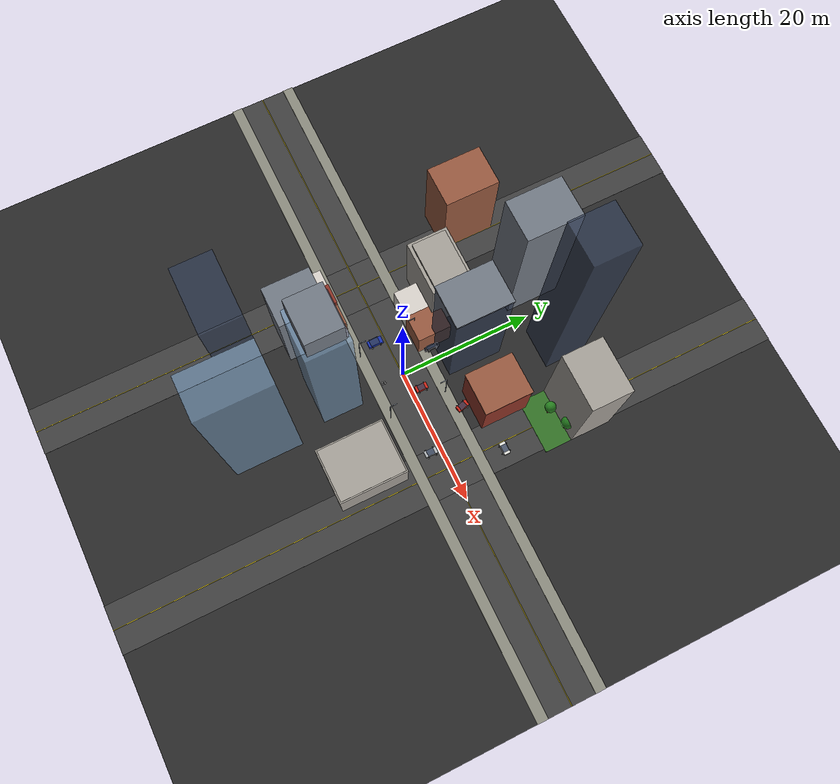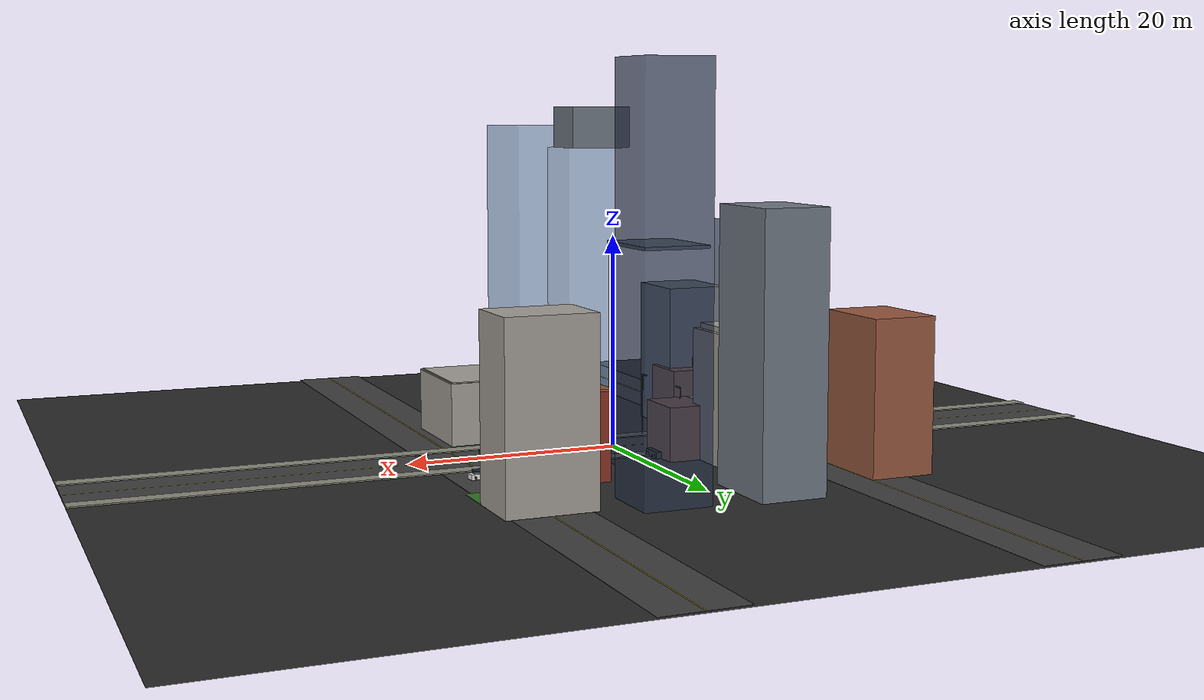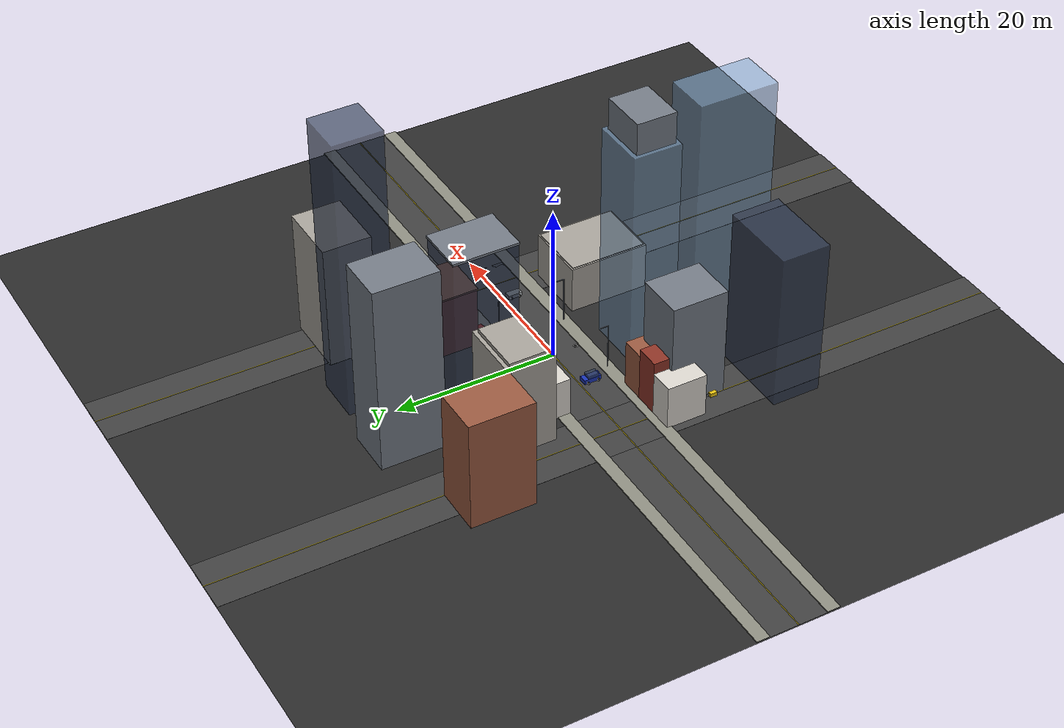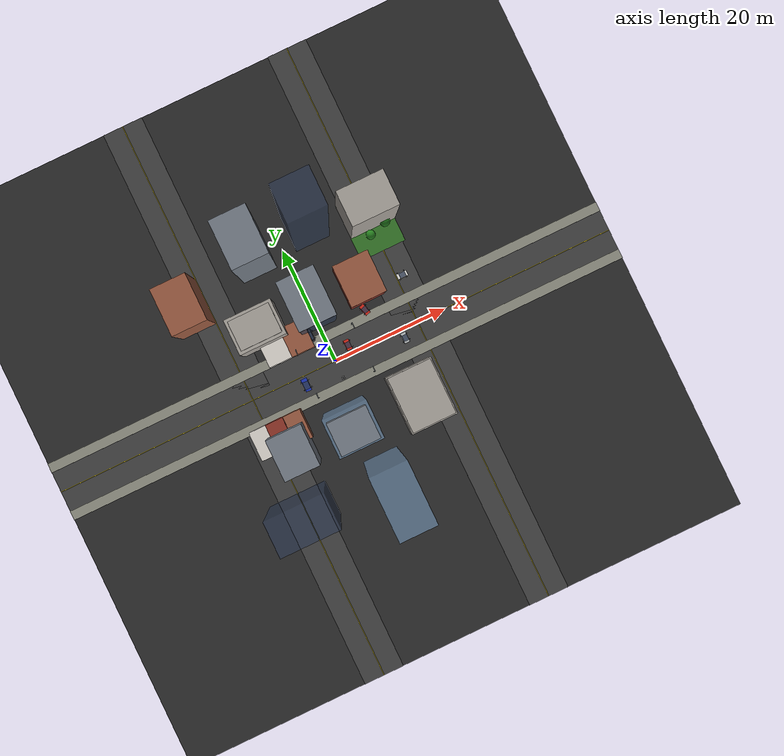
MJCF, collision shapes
<mujoco model="Skydio X2 City">
  <compiler autolimits="true" assetdir="assets"/>

  <option timestep="0.01" density="1.225" viscosity="1.8e-5"/>

  <default>
    <!-- City scenery: visual only, no collision with drone -->
    <default class="scenery">
      <geom contype="0" conaffinity="0"/>
    </default>
    <default class="x2">
      <geom mass="0"/>
      <motor ctrlrange="0 13"/>
      <mesh scale="0.01 0.01 0.01"/>
      <default class="visual">
        <geom group="2" type="mesh" contype="0" conaffinity="0"/>
      </default>
      <default class="collision">
        <geom group="3" type="box"/>
        <default class="rotor">
          <geom type="ellipsoid" size=".13 .13 .01"/>
        </default>
      </default>
      <site group="5"/>
    </default>
  </default>

  <statistic center="0 0 5" extent="30" meansize="0.5"/>

  <visual>
    <headlight diffuse="0.5 0.5 0.5" ambient="0.3 0.3 0.3" specular="0 0 0"/>
    <rgba haze="0.15 0.25 0.35 1"/>
    <global azimuth="-20" elevation="-20" ellipsoidinertia="true"/>
    <map znear="0.01" zfar="200"/>
  </visual>

  <asset>
    <!-- Drone mesh + texture -->
    <texture type="2d" name="x2_tex" file="X2_lowpoly_texture_SpinningProps_1024.png"/>
    <material name="phong3SG" texture="x2_tex"/>
    <material name="invisible" rgba="0 0 0 0"/>
    <mesh class="x2" file="X2_lowpoly.obj"/>

    <!-- Sky -->
    <texture type="skybox" builtin="gradient" rgb1="0.4 0.6 0.8" rgb2="0.05 0.1 0.2"
      width="512" height="3072"/>

    <!-- Road texture -->
    <texture type="2d" name="road_tex" builtin="flat" rgb1="0.25 0.25 0.25"
      width="64" height="64"/>
    <material name="road" texture="road_tex" reflectance="0.05"/>

    <!-- Sidewalk -->
    <texture type="2d" name="sidewalk_tex" builtin="flat" rgb1="0.55 0.55 0.5"
      width="64" height="64"/>
    <material name="sidewalk" texture="sidewalk_tex"/>

    <!-- Grass/park -->
    <texture type="2d" name="grass_tex" builtin="flat" rgb1="0.2 0.45 0.15"
      width="64" height="64"/>
    <material name="grass" texture="grass_tex"/>

    <!-- Ground (asphalt) -->
    <texture type="2d" name="ground_tex" builtin="checker" mark="edge"
      rgb1="0.18 0.18 0.18" rgb2="0.15 0.15 0.15"
      markrgb="0.3 0.3 0.1" width="300" height="300"/>
    <material name="ground" texture="ground_tex" texuniform="true" texrepeat="20 20" reflectance="0.02"/>

    <!-- Building materials -->
    <material name="glass" rgba="0.5 0.65 0.8 0.6" reflectance="0.5"/>
    <material name="concrete" rgba="0.65 0.63 0.6 1" reflectance="0.05"/>
    <material name="brick" rgba="0.6 0.35 0.25 1" reflectance="0.03"/>
    <material name="steel" rgba="0.45 0.48 0.52 1" reflectance="0.3"/>
    <material name="dark_glass" rgba="0.2 0.25 0.35 0.7" reflectance="0.6"/>
    <material name="white_concrete" rgba="0.85 0.83 0.8 1" reflectance="0.1"/>
    <material name="red_brick" rgba="0.55 0.2 0.15 1" reflectance="0.03"/>
    <material name="yellow_paint" rgba="0.9 0.8 0.1 1"/>
    <material name="white_paint" rgba="0.95 0.95 0.95 1"/>

    <!-- Car materials -->
    <material name="car_red" rgba="0.8 0.15 0.1 1" reflectance="0.3"/>
    <material name="car_blue" rgba="0.1 0.2 0.7 1" reflectance="0.3"/>
    <material name="car_white" rgba="0.9 0.9 0.88 1" reflectance="0.25"/>
    <material name="car_black" rgba="0.1 0.1 0.12 1" reflectance="0.35"/>
    <material name="car_silver" rgba="0.7 0.72 0.73 1" reflectance="0.4"/>
    <material name="car_yellow" rgba="0.9 0.75 0.05 1" reflectance="0.3"/>
    <material name="tire" rgba="0.15 0.15 0.15 1" reflectance="0.02"/>
    <material name="window" rgba="0.2 0.25 0.35 0.8" reflectance="0.5"/>
  </asset>

  <worldbody>
    <!-- Lights -->
    <light pos="0 0 30" dir="0 0 -1" directional="true" diffuse="0.8 0.8 0.75" castshadow="true"/>
    <light pos="-20 20 25" dir="0.5 -0.5 -1" diffuse="0.3 0.3 0.35"/>

    <!-- Ground plane -->
    <geom name="floor" size="50 50 0.1" type="plane" material="ground"/>

    <!-- ═══════════════ ROADS ═══════════════ -->
    <!-- Main road (runs along X axis) -->
    <geom class="scenery" type="box" size="50 3.5 0.005" pos="0 0 0.005" material="road"/>
    <!-- Center line -->
    <geom class="scenery" type="box" size="50 0.05 0.006" pos="0 0 0.006" material="yellow_paint"/>

    <!-- Cross street (runs along X axis) -->
    <geom class="scenery" type="box" size="3.5 50 0.005" pos="15 0 0.005" material="road"/>
    <geom class="scenery" type="box" size="0.05 50 0.006" pos="15 0 0.006" material="yellow_paint"/>

    <!-- Second cross street -->
    <geom class="scenery" type="box" size="3.5 50 0.005" pos="-15 0 0.005" material="road"/>
    <geom class="scenery" type="box" size="0.05 50 0.006" pos="-15 0 0.006" material="yellow_paint"/>

    <!-- Sidewalks along main road -->
    <geom class="scenery" type="box" size="50 0.8 0.06" pos="0 4.3 0.06" material="sidewalk"/>
    <geom class="scenery" type="box" size="50 0.8 0.06" pos="0 -4.3 0.06" material="sidewalk"/>

    <!-- ═══════════════ BLOCK 1: Downtown (right of main road) ═══════════════ -->

    <!-- Tall office tower -->
    <geom class="scenery" type="box" size="3 4 10" pos="0 10 10" material="dark_glass"/>
    <geom class="scenery" type="box" size="3.1 4.1 0.15" pos="0 10 20" material="steel"/> <!-- roof edge -->

    <!-- Medium concrete building -->
    <geom class="scenery" type="box" size="4 3 6" pos="-9 10 6" material="concrete"/>
    <geom class="scenery" type="box" size="3.5 2.5 0.5" pos="-9 10 12" material="concrete"/> <!-- rooftop structure -->

    <!-- Red brick apartment -->
    <geom class="scenery" type="box" size="3 3.5 4" pos="9 10 4" material="red_brick"/>
    <geom class="scenery" type="box" size="3.1 3.6 0.1" pos="9 10 8" material="brick"/> <!-- cornice -->

    <!-- Small shop row -->
    <geom class="scenery" type="box" size="2 2.5 2.5" pos="-8 6 2.5" material="white_concrete"/>
    <geom class="scenery" type="box" size="2 2.5 2.5" pos="-4 6 2.5" material="brick"/>

    <!-- ═══════════════ BLOCK 2: Left of main road ═══════════════ -->

    <!-- Glass skyscraper -->
    <geom class="scenery" type="box" size="3.5 3 14" pos="-2 -10 14" material="glass"/>
    <geom class="scenery" type="box" size="3 2.5 2" pos="-2 -10 30" material="steel"/> <!-- antenna structure -->

    <!-- Parking garage -->
    <geom class="scenery" type="box" size="4 5 3" pos="10 -11 3" material="concrete"/>
    <geom class="scenery" type="box" size="3.8 4.8 0.1" pos="10 -11 6" material="concrete"/> <!-- top level -->

    <!-- Row houses -->
    <geom class="scenery" type="box" size="1.5 2.5 3" pos="-10 -7 3" material="brick"/>
    <geom class="scenery" type="box" size="1.5 2.5 3.5" pos="-13 -7 3.5" material="red_brick"/>
    <geom class="scenery" type="box" size="1.5 2.5 2.8" pos="-16 -7 2.8" material="white_concrete"/>

    <!-- Modern office -->
    <geom class="scenery" type="box" size="3 3.5 7" pos="-12 -10 7" material="steel"/>

    <!-- ═══════════════ BLOCK 3: Far buildings ═══════════════ -->

    <!-- Distant skyline buildings -->
    <geom class="scenery" type="box" size="3 3 18" pos="5 22 18" material="dark_glass"/>
    <geom class="scenery" type="box" size="3 4 12" pos="-5 22 12" material="steel"/>
    <geom class="scenery" type="box" size="4 3 8" pos="15 20 8" material="concrete"/>
    <geom class="scenery" type="box" size="3 5 15" pos="0 -22 15" material="glass"/>
    <geom class="scenery" type="box" size="5 3 10" pos="-15 -20 10" material="dark_glass"/>
    <geom class="scenery" type="box" size="3 4 7" pos="-18 18 7" material="brick"/>

    <!-- ═══════════════ PARK ═══════════════ -->
    <geom class="scenery" type="box" size="4 5 0.01" pos="15 18 0.01" material="grass"/>
    <!-- Trees (simple cylinders + spheres) -->
    <geom class="scenery" type="cylinder" size="0.15 1.2" pos="14 16 1.2" material="brick"/>
    <geom class="scenery" type="sphere" size="0.8" pos="14 16 2.8" rgba="0.15 0.5 0.12 1"/>
    <geom class="scenery" type="cylinder" size="0.12 1.0" pos="16 19 1.0" material="brick"/>
    <geom class="scenery" type="sphere" size="0.7" pos="16 19 2.3" rgba="0.2 0.55 0.15 1"/>
    <geom class="scenery" type="cylinder" size="0.15 1.3" pos="17 17 1.3" material="brick"/>
    <geom class="scenery" type="sphere" size="0.9" pos="17 17 3.0" rgba="0.12 0.45 0.1 1"/>

    <!-- ═══════════════ STREET LIGHTS ═══════════════ -->
    <geom class="scenery" type="cylinder" size="0.06 3" pos="5 4.3 3" material="steel"/>
    <geom class="scenery" type="box" size="0.05 0.5 0.05" pos="5 3.8 6" material="steel"/>
    <geom class="scenery" type="cylinder" size="0.06 3" pos="-5 4.3 3" material="steel"/>
    <geom class="scenery" type="box" size="0.05 0.5 0.05" pos="-5 3.8 6" material="steel"/>
    <geom class="scenery" type="cylinder" size="0.06 3" pos="5 -4.3 3" material="steel"/>
    <geom class="scenery" type="box" size="0.05 0.5 0.05" pos="5 -3.8 6" material="steel"/>
    <geom class="scenery" type="cylinder" size="0.06 3" pos="-5 -4.3 3" material="steel"/>
    <geom class="scenery" type="box" size="0.05 0.5 0.05" pos="-5 -3.8 6" material="steel"/>

    <!-- ═══════════════ CARS ═══════════════ -->

    <!-- Car 1: Red sedan on main road, heading north -->
    <body name="car1" pos="3 1.5 0.25">
      <geom class="scenery" type="box" size="0.45 0.9 0.25" material="car_red"/>   <!-- body -->
      <geom class="scenery" type="box" size="0.42 0.5 0.22" pos="0 -0.05 0.35" material="window"/> <!-- cabin -->
      <geom class="scenery" type="cylinder" size="0.18 0.08" pos="0.5 0.55 -0.12" euler="90 0 0" material="tire"/>
      <geom class="scenery" type="cylinder" size="0.18 0.08" pos="-0.5 0.55 -0.12" euler="90 0 0" material="tire"/>
      <geom class="scenery" type="cylinder" size="0.18 0.08" pos="0.5 -0.55 -0.12" euler="90 0 0" material="tire"/>
      <geom class="scenery" type="cylinder" size="0.18 0.08" pos="-0.5 -0.55 -0.12" euler="90 0 0" material="tire"/>
    </body>

    <!-- Car 2: Blue SUV, heading south -->
    <body name="car2" pos="-6 -1.5 0.3">
      <geom class="scenery" type="box" size="0.5 1.1 0.3" material="car_blue"/>
      <geom class="scenery" type="box" size="0.47 0.65 0.28" pos="0 -0.1 0.42" material="window"/>
      <geom class="scenery" type="cylinder" size="0.2 0.09" pos="0.55 0.65 -0.15" euler="90 0 0" material="tire"/>
      <geom class="scenery" type="cylinder" size="0.2 0.09" pos="-0.55 0.65 -0.15" euler="90 0 0" material="tire"/>
      <geom class="scenery" type="cylinder" size="0.2 0.09" pos="0.55 -0.65 -0.15" euler="90 0 0" material="tire"/>
      <geom class="scenery" type="cylinder" size="0.2 0.09" pos="-0.55 -0.65 -0.15" euler="90 0 0" material="tire"/>
    </body>

    <!-- Car 3: White sedan on cross street -->
    <body name="car3" pos="16 8 0.25" euler="0 0 90">
      <geom class="scenery" type="box" size="0.45 0.9 0.25" material="car_white"/>
      <geom class="scenery" type="box" size="0.42 0.5 0.22" pos="0 -0.05 0.35" material="window"/>
      <geom class="scenery" type="cylinder" size="0.18 0.08" pos="0.5 0.55 -0.12" euler="90 0 0" material="tire"/>
      <geom class="scenery" type="cylinder" size="0.18 0.08" pos="-0.5 0.55 -0.12" euler="90 0 0" material="tire"/>
      <geom class="scenery" type="cylinder" size="0.18 0.08" pos="0.5 -0.55 -0.12" euler="90 0 0" material="tire"/>
      <geom class="scenery" type="cylinder" size="0.18 0.08" pos="-0.5 -0.55 -0.12" euler="90 0 0" material="tire"/>
    </body>

    <!-- Car 4: Black SUV parked -->
    <body name="car4" pos="-2 5.5 0.3">
      <geom class="scenery" type="box" size="0.5 1.1 0.3" material="car_black"/>
      <geom class="scenery" type="box" size="0.47 0.65 0.28" pos="0 -0.1 0.42" material="window"/>
      <geom class="scenery" type="cylinder" size="0.2 0.09" pos="0.55 0.65 -0.15" euler="90 0 0" material="tire"/>
      <geom class="scenery" type="cylinder" size="0.2 0.09" pos="-0.55 0.65 -0.15" euler="90 0 0" material="tire"/>
      <geom class="scenery" type="cylinder" size="0.2 0.09" pos="0.55 -0.65 -0.15" euler="90 0 0" material="tire"/>
      <geom class="scenery" type="cylinder" size="0.2 0.09" pos="-0.55 -0.65 -0.15" euler="90 0 0" material="tire"/>
    </body>

    <!-- Car 5: Silver sedan -->
    <body name="car5" pos="12 -1.5 0.25">
      <geom class="scenery" type="box" size="0.45 0.9 0.25" material="car_silver"/>
      <geom class="scenery" type="box" size="0.42 0.5 0.22" pos="0 -0.05 0.35" material="window"/>
      <geom class="scenery" type="cylinder" size="0.18 0.08" pos="0.5 0.55 -0.12" euler="90 0 0" material="tire"/>
      <geom class="scenery" type="cylinder" size="0.18 0.08" pos="-0.5 0.55 -0.12" euler="90 0 0" material="tire"/>
      <geom class="scenery" type="cylinder" size="0.18 0.08" pos="0.5 -0.55 -0.12" euler="90 0 0" material="tire"/>
      <geom class="scenery" type="cylinder" size="0.18 0.08" pos="-0.5 -0.55 -0.12" euler="90 0 0" material="tire"/>
    </body>

    <!-- Car 6: Yellow taxi on cross street -->
    <body name="car6" pos="-14.5 -12 0.25" euler="0 0 90">
      <geom class="scenery" type="box" size="0.45 0.95 0.25" material="car_yellow"/>
      <geom class="scenery" type="box" size="0.42 0.5 0.22" pos="0 -0.05 0.35" material="window"/>
      <geom class="scenery" type="cylinder" size="0.18 0.08" pos="0.5 0.55 -0.12" euler="90 0 0" material="tire"/>
      <geom class="scenery" type="cylinder" size="0.18 0.08" pos="-0.5 0.55 -0.12" euler="90 0 0" material="tire"/>
      <geom class="scenery" type="cylinder" size="0.18 0.08" pos="0.5 -0.55 -0.12" euler="90 0 0" material="tire"/>
      <geom class="scenery" type="cylinder" size="0.18 0.08" pos="-0.5 -0.55 -0.12" euler="90 0 0" material="tire"/>
    </body>

    <!-- Car 7: Red car parked on side street -->
    <body name="car7" pos="8 5.5 0.25" euler="0 0 15">
      <geom class="scenery" type="box" size="0.45 0.9 0.25" material="car_red"/>
      <geom class="scenery" type="box" size="0.42 0.5 0.22" pos="0 -0.05 0.35" material="window"/>
      <geom class="scenery" type="cylinder" size="0.18 0.08" pos="0.5 0.55 -0.12" euler="90 0 0" material="tire"/>
      <geom class="scenery" type="cylinder" size="0.18 0.08" pos="-0.5 0.55 -0.12" euler="90 0 0" material="tire"/>
      <geom class="scenery" type="cylinder" size="0.18 0.08" pos="0.5 -0.55 -0.12" euler="90 0 0" material="tire"/>
      <geom class="scenery" type="cylinder" size="0.18 0.08" pos="-0.5 -0.55 -0.12" euler="90 0 0" material="tire"/>
    </body>

    <!-- ═══════════════ DRONE (starts at street level) ═══════════════ -->
    <body name="x2" pos="0 -3 0.1" childclass="x2">
      <freejoint/>
      <camera name="track" pos="-2 0 1.5" xyaxes="0 -1 0 0.3 0 1" mode="trackcom"/>
      <camera name="fpv" pos="0.15 0 0.05" xyaxes="0 -1 0 0 0 1" fovy="90"/>
      <site name="imu" pos="0 0 .02"/>
      <geom material="phong3SG" mesh="X2_lowpoly" class="visual" quat="0 0 1 1"/>
      <geom class="collision" size=".06 .027 .02" pos=".04 0 .02"/>
      <geom class="collision" size=".06 .027 .02" pos=".04 0 .06"/>
      <geom class="collision" size=".05 .027 .02" pos="-.07 0 .065"/>
      <geom class="collision" size=".023 .017 .01" pos="-.137 .008 .065" quat="1 0 0 1"/>
      <geom name="rotor1" class="rotor" pos="-.14 -.18 .05" mass=".25"/>
      <geom name="rotor2" class="rotor" pos="-.14 .18 .05" mass=".25"/>
      <geom name="rotor3" class="rotor" pos=".14 .18 .08" mass=".25"/>
      <geom name="rotor4" class="rotor" pos=".14 -.18 .08" mass=".25"/>
      <geom size=".16 .04 .02" pos="0 0 0.02" type="ellipsoid" mass=".325" class="visual" material="invisible"/>
      <site name="thrust1" pos="-.14 -.18 .05"/>
      <site name="thrust2" pos="-.14 .18 .05"/>
      <site name="thrust3" pos=".14 .18 .08"/>
      <site name="thrust4" pos=".14 -.18 .08"/>
    </body>

  </worldbody>

  <actuator>
    <motor class="x2" name="thrust1" site="thrust1" gear="0 0 1 0 0 -.0201"/>
    <motor class="x2" name="thrust2" site="thrust2" gear="0 0 1 0 0  .0201"/>
    <motor class="x2" name="thrust3" site="thrust3" gear="0 0 1 0 0  .0201"/>
    <motor class="x2" name="thrust4" site="thrust4" gear="0 0 1 0 0 -.0201"/>
  </actuator>

  <sensor>
    <gyro name="body_gyro" site="imu"/>
    <accelerometer name="body_linacc" site="imu"/>
    <framequat name="body_quat" objtype="site" objname="imu"/>
  </sensor>

  <keyframe>
    <key name="hover" qpos="0 -3 3 0.707 0 0 0.707" ctrl="3.2495625 3.2495625 3.2495625 3.2495625"/>
  </keyframe>
</mujoco>
